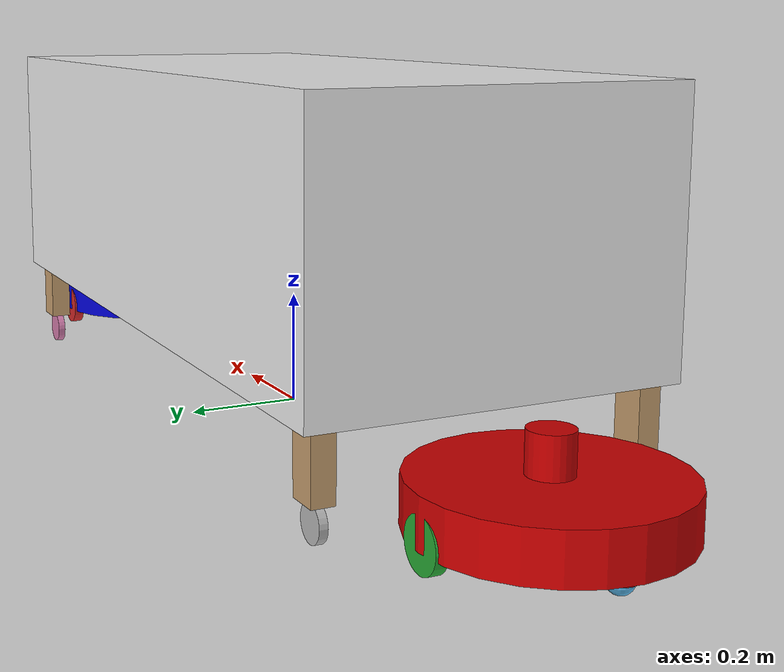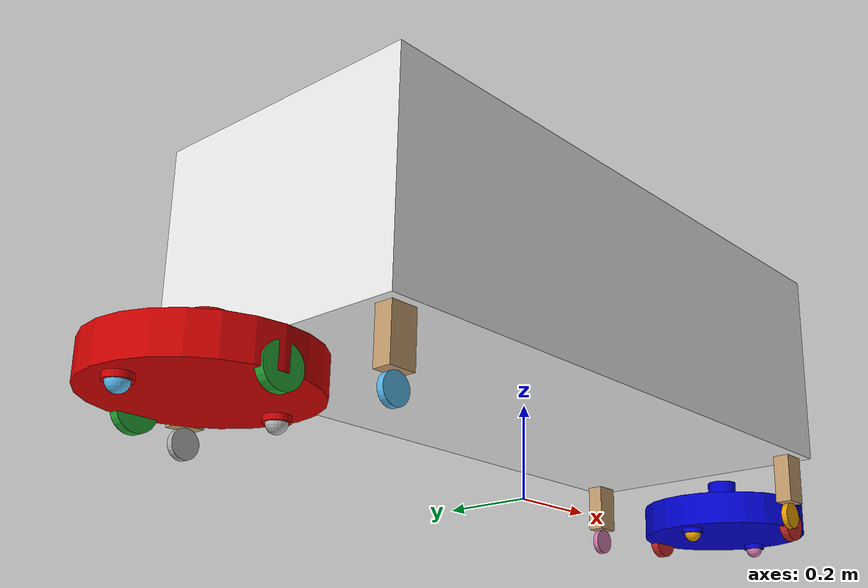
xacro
<?xml version="1.0"?>
<robot name="PATH" xmlns:xacro="http://www.ros.org/wiki/xacro">

  <xacro:property name="testbed_h" value="0.62"/><!--Faktisk d-->
  <xacro:property name="testbed_w" value="1.4"/>
  <xacro:property name="testbed_d" value="0.45"/> <!--Faktisk h-->
  <xacro:property name="testbed_m" value="11.26"/>

  <xacro:property name="testbed_wheellink_h" value="0.038"/> <!--Faktisk d-->
  <xacro:property name="testbed_wheellink_w" value="0.057"/>
  <xacro:property name="testbed_wheellink_d" value="0.11"/> <!--Faktisk h-->
  <xacro:property name="testbed_wheellink_m" value="0.135"/>
  <xacro:property name="testbed_wheellink_y" value="0.271"/>
  <xacro:property name="testbed_wheellink_x" value="0.6515"/>
  <xacro:property name="testbed_wheellink_z" value="0.115"/>

  <xacro:property name="testbed_wheel_r" value="0.03"/>
  <xacro:property name="testbed_wheel_h" value="0.0136"/>
  <xacro:property name="testbed_wheel_m" value="0.270"/>
  <xacro:property name="testbed_wheel_z" value="-0.085"/>
  <xacro:property name="testbed_wheel_friction" value="1"/>

  <xacro:property name="frame_mount_1_y" value="0"/>
  <xacro:property name="frame_mount_1_x" value="0.7"/>
  <xacro:property name="frame_mount_1_z" value="0.1385"/>
  <xacro:property name="frame_mount_1_w" value="0.02"/>
  <xacro:property name="frame_mount_1_h" value="0.02"/> <!--Faktisk d-->
  <xacro:property name="frame_mount_1_d" value="0.063"/> <!--Faktisk h-->
  <xacro:property name="frame_mount_1_m" value="0.135"/>

  <xacro:property name="frame_mount_robot_1_r" value="0.02"/>
  <xacro:property name="frame_mount_robot_1_l" value="0.02"/>
  <xacro:property name="frame_mount_robot_1_z" value="0.0315"/>

  <xacro:property name="offset_x_duck2" value="-0.111"/>
  <xacro:property name="offset_x_duck1" value="0.111"/>
  <xacro:property name="offset_z_duck" value="-0.105"/>

  <material name ="blue">
    <color rgba="0 0 0.8 1"/>
  </material>

   <material name ="red">
    <color rgba="0.8 0 0 1"/>
  </material>

   <material name ="brown">
    <color rgba="${193/255} ${154/255} ${107/255} 1"/>
  </material>

  <xacro:macro name="sphere_inertia" params="m r">
    <inertial>
      <mass value="${m}"/>
      <inertia ixx="${2.0*m*(r*r)/5.0}" ixy="0.0" ixz="0.0" iyy="${2.0*m*(r*r)/5.0}" iyz="0.0" izz="${2.0*m*(r*r)/5.0}"/>
    </inertial>
  </xacro:macro>

  <xacro:macro name="box_inertia" params="m w h d">
    <inertial>
      <mass value="${m}"/>
      <inertia ixx="${m / 12.0 * (d*d + h*h)}" ixy="0.0" ixz="0.0" iyy="${m / 12.0 * (w*w + h*h)}" iyz="0.0" izz="${m / 12.0 * (w*w + d*d)}"/>
    </inertial>
  </xacro:macro>

  <xacro:macro name="cylinder_inertia" params="m r h">
    <inertial>
      <mass value="${m}"/>
      <inertia ixx="${m*(3*r*r+h*h)/12}" ixy = "0" ixz = "0" iyy="${m*(3*r*r+h*h)/12}" iyz = "0" izz="${m*r*r/2}"/>
    </inertial>
  </xacro:macro>

  <link name="base_link">
  </link>

  <link name="testBed">
  <visual>
    <origin xyz="0 0 0.395" rpy="0 0 0"/>
    <geometry>
      <box size="${testbed_w} ${testbed_h} ${testbed_d}"/>
    </geometry>
  </visual>
   <collision>
      <origin xyz="0 0 0.395" rpy="0 0 0"/>
      <geometry>
        <box size="${testbed_w} ${testbed_h} ${testbed_d}"/>
      </geometry>
    </collision>
  </link>

  <joint name="base_joint" type="fixed">
  <origin xyz="0 0 0" rpy="0 0 0"/>
  <parent link="base_link"/>
  <child link="testBed"/>
</joint>

  <link name="testbed_wheelLink_1">
  <xacro:box_inertia m="${testbed_wheellink_m}" w="${testbed_wheellink_w}" h="${testbed_wheellink_h}" d="${testbed_wheellink_d}"/>
  <visual>
    <material name = "brown"/>
    <origin xyz="0 0 0" rpy="0 0 0"/>
    <geometry>
      <box size="${testbed_wheellink_w} ${testbed_wheellink_h} ${testbed_wheellink_d}"/>
    </geometry>
  </visual>
   <collision>
      <origin xyz="0 0 0" rpy="0 0 0"/>
      <geometry>
        <box size="${testbed_wheellink_w} ${testbed_wheellink_h} ${testbed_wheellink_d}"/>
      </geometry>
    </collision>
  </link>

  <joint name="testbed_wheelLink_1_joint" type="fixed">
    <origin xyz="${testbed_wheellink_x} ${testbed_wheellink_y} ${testbed_wheellink_z}" rpy="0 0 0"/>
    <parent link="testBed"/>
    <child link="testbed_wheelLink_1"/>
  </joint>

  <link name="testbed_wheelLink_2">
  <xacro:box_inertia m="${testbed_wheellink_m}" w="${testbed_wheellink_w}" h="${testbed_wheellink_h}" d="${testbed_wheellink_d}"/>
  <visual>
    <material name = "brown"/>
    <origin xyz="0 0 0" rpy="0 0 0"/>
    <geometry>
      <box size="${testbed_wheellink_w} ${testbed_wheellink_h} ${testbed_wheellink_d}"/>
    </geometry>
  </visual>
   <collision>
   <origin xyz="0 0 0" rpy="0 0 0"/>
      <geometry>
        <box size="${testbed_wheellink_w} ${testbed_wheellink_h} ${testbed_wheellink_d}"/>
      </geometry>
    </collision>
  </link>

<joint name="testbed_wheelLink_2_joint" type="fixed">
    <origin xyz="-${testbed_wheellink_x} ${testbed_wheellink_y} ${testbed_wheellink_z}" rpy="0 0 0"/>
    <parent link="testBed"/>
    <child link="testbed_wheelLink_2"/>
  </joint>

  <link name="testbed_wheelLink_3">
  <xacro:box_inertia m="${testbed_wheellink_m}" w="${testbed_wheellink_w}" h="${testbed_wheellink_h}" d="${testbed_wheellink_d}"/>
  <visual>
    <material name = "brown"/>
    <origin xyz="0 0 0" rpy="0 0 0"/>
    <geometry>
      <box size="${testbed_wheellink_w} ${testbed_wheellink_h} ${testbed_wheellink_d}"/>
    </geometry>
  </visual>
   <collision>
      <origin xyz="0 0 0" rpy="0 0 0"/>
      <geometry>
        <box size="${testbed_wheellink_w} ${testbed_wheellink_h} ${testbed_wheellink_d}"/>
      </geometry>
    </collision>
  </link>

  <joint name="testbed_wheelLink_3_joint" type="fixed">
    <origin xyz="${testbed_wheellink_x} -${testbed_wheellink_y} ${testbed_wheellink_z}" rpy="0 0 0"/>
    <parent link="testBed"/>
    <child link="testbed_wheelLink_3"/>
  </joint>

  <link name="testbed_wheelLink_4">
  <xacro:box_inertia m="${testbed_wheellink_m}" w="${testbed_wheellink_w}" h="${testbed_wheellink_h}" d="${testbed_wheellink_d}"/>
  <visual>
    <material name = "brown"/>
    <origin xyz="0 0 0" rpy="0 0 0"/>
    <geometry>
      <box size="${testbed_wheellink_w} ${testbed_wheellink_h} ${testbed_wheellink_d}"/>
    </geometry>
  </visual>
   <collision>
      <origin xyz="0 0 0" rpy="0 0 0"/>
      <geometry>
        <box size="${testbed_wheellink_w} ${testbed_wheellink_h} ${testbed_wheellink_d}"/>
      </geometry>
    </collision>
  </link>

  <joint name="testbed_wheelLink_4_joint" type="fixed">
     <origin xyz="-${testbed_wheellink_x} -${testbed_wheellink_y} ${testbed_wheellink_z}" rpy="0 0 0"/>
    <parent link="testBed"/>
    <child link="testbed_wheelLink_4"/>
  </joint>

  <link name="testbed_wheel_1">
    <visual>
      <origin xyz="0 0 0" rpy="1.5708 0 0"/>
      <geometry>
        <cylinder length="${testbed_wheel_h}" radius="${testbed_wheel_r}"/>
      </geometry>
    </visual>

    <surface>
      <friction>
        <ode>
          <mu>${testbed_wheel_friction}</mu>
        </ode>
      </friction>
    </surface>
    <xacro:sphere_inertia m="${testbed_wheel_m}" r="${testbed_wheel_r}"/>
  </link>

  <link name="testbed_wheel_2">
    <visual>
      <origin xyz="0 0 0" rpy="1.5708 0 0"/>
      <geometry>
        <cylinder length="${testbed_wheel_h}" radius="${testbed_wheel_r}"/>
      </geometry>
    </visual>

    <surface>
      <friction>
        <ode>
          <mu>${testbed_wheel_friction}</mu>
        </ode>
      </friction>
    </surface>
    <xacro:sphere_inertia m="${testbed_wheel_m}" r="${testbed_wheel_r}"/>
  </link>

  <link name="testbed_wheel_3">
    <visual>
      <origin xyz="0 0 0" rpy="1.5708 0 0"/>
      <geometry>
        <cylinder length="${testbed_wheel_h}" radius="${testbed_wheel_r}"/>
      </geometry>
    </visual>

    <surface>
      <friction>
        <ode>
          <mu>${testbed_wheel_friction}</mu>
          <mu2>${testbed_wheel_friction}</mu2>
          <slip1>${testbed_wheel_friction}</slip1>
          <slip2>${testbed_wheel_friction}</slip2>
        </ode>
      </friction>
    </surface>
    <xacro:sphere_inertia m="${testbed_wheel_m}" r="${testbed_wheel_r}"/>
  </link>

  <link name="testbed_wheel_4">
    <visual>
      <origin xyz="0 0 0" rpy="1.5708 0 0"/>
      <geometry>
        <cylinder length="${testbed_wheel_h}" radius="${testbed_wheel_r}"/>
      </geometry>
    </visual>

    <surface>
      <friction>
        <ode>
          <mu>${testbed_wheel_friction}</mu>
          <mu2>${testbed_wheel_friction}</mu2>
          <slip1>${testbed_wheel_friction}</slip1>
          <slip2>${testbed_wheel_friction}</slip2>
        </ode>
      </friction>
    </surface>
    <xacro:sphere_inertia m="${testbed_wheel_m}" r="${testbed_wheel_r}"/>
  </link>

  <joint name="testbed_wheel1_joint" type="continuous">
    <origin xyz="0 0 ${testbed_wheel_z}" rpy="0 0 0"/>
    <parent link="testbed_wheelLink_1"/>
    <child link="testbed_wheel_1"/>
  </joint>

  <joint name="testbed_wheel2_joint" type="continuous">
    <origin xyz="0 0 ${testbed_wheel_z}" rpy="0 0 0"/>
    <parent link="testbed_wheelLink_2"/>
    <child link="testbed_wheel_2"/>
  </joint>

    <joint name="testbed_wheel3_joint" type="continuous">
    <origin xyz="0 0 ${testbed_wheel_z}" rpy="0 0 0"/>
    <parent link="testbed_wheelLink_3"/>
    <child link="testbed_wheel_3"/>
  </joint>

  <joint name="testbed_wheel4_joint" type="continuous">
    <origin xyz="0 0 ${testbed_wheel_z}" rpy="0 0 0"/>
    <parent link="testbed_wheelLink_4"/>
    <child link="testbed_wheel_4"/>
  </joint>

  <link name="framemount_1_link">
  <xacro:box_inertia m="${frame_mount_1_m}" w="${frame_mount_1_w}" h="${frame_mount_1_h}" d="${frame_mount_1_d}"/>
  <visual>
    <origin xyz="0 0 0" rpy="0 0 0"/>
    <geometry>
      <box size="${frame_mount_1_w} ${frame_mount_1_h} ${frame_mount_1_d}"/>
    </geometry>
  </visual>
     </link>

  <joint name="testbed_framemount_1_joint" type="fixed">
    <origin xyz="${frame_mount_1_x + offset_x_duck1} ${frame_mount_1_y} ${frame_mount_1_z} " rpy="0 0 0"/>
    <parent link="testBed"/>
    <child link="framemount_1_link"/>
  </joint>
  <link name="duck1">
  <xacro:cylinder_inertia m="2" r="0.2" h="0.076"/>
    <visual>
      <material name = "blue"/>
      <origin xyz="0 0 0.038" rpy="0 0 0"/>
      <geometry>
        <cylinder length="0.076" radius="0.2"/>
      </geometry>
    </visual>
    <collision>
      <origin xyz="0 0 0.038" rpy="0 0 0"/>
      <geometry>
        <cylinder length="0.076" radius="0.2"/>
      </geometry>
    </collision>
  </link>

  <joint name="duck1_joint" type="continuous">
    <origin xyz="0 0 ${offset_z_duck} " rpy="0 0 0"/>
     <axis xyz="0 0 1" rpy="0 0 0"/>
    <parent link="framemount_1_link"/>
    <child link="duck1"/>
  </joint>

  <link name="duck1_lidar">
  <xacro:cylinder_inertia m="0.2" r="0.035" h="0.064"/>
    <visual>
      <material name = "blue"/>
      <origin xyz="0 0 0.032" rpy="0 0 0"/>
      <geometry>
        <cylinder length="0.064" radius="0.035"/>
      </geometry>
    </visual>
    <collision>
      <origin xyz="0 0 0.032" rpy="0 0 0"/>
      <geometry>
        <cylinder length="0.064" radius="0.035"/>
      </geometry>
    </collision>
  </link>

  <link name="duck1_castorsupport_1">
  <xacro:cylinder_inertia m="0.2" r="0.025" h="0.012"/>
    <visual>
      <material name = "blue"/>
      <origin xyz="0 0 0" rpy="0 0 0"/>
      <geometry>
        <cylinder length="0.012" radius="0.025"/>
      </geometry>
    </visual>
    <collision>
      <origin xyz="0 0 0" rpy="0 0 0"/>
      <geometry>
        <cylinder length="0.012" radius="0.025"/>
      </geometry>
    </collision>
  </link>

  <joint name="caster1_joint" type="fixed">
    <origin xyz="0.153 0 -0.006" rpy="0 0 0"/>
    <parent link="duck1"/>
    <child link="duck1_castorsupport_1"/>
  </joint>

  <link name="duck1_castorwheel_1">
  <xacro:sphere_inertia m="0.5" r="0.025"/>
    <visual>
      <origin xyz="0 0 0" rpy="0 0 0"/>
      <geometry>
        <sphere radius="0.02"/>
      </geometry>
    </visual>
    <collision>
      <origin xyz="0 0 0" rpy="0 0 0"/>
      <geometry>
        <cylinder length="0.012" radius="0.025"/>
      </geometry>
    </collision>
  </link>

  <joint name="casterwheel_1_joint" type="continuous">
    <origin xyz="0 0 -0.006" rpy="0 0 0"/>
    <axis xyz="0 1 0" rpy="0 0 0"/>
    <parent link="duck1_castorsupport_1"/>
    <child link="duck1_castorwheel_1"/>
  </joint>

  <link name="duck1_castorsupport_2">
  <xacro:cylinder_inertia m="0.2" r="0.025" h="0.012"/>
    <visual>
      <material name = "blue"/>
      <origin xyz="0 0 0" rpy="0 0 0"/>
      <geometry>
        <cylinder length="0.012" radius="0.025"/>
      </geometry>
    </visual>
    <collision>
      <origin xyz="0 0 0" rpy="0 0 0"/>
      <geometry>
        <cylinder length="0.012" radius="0.025"/>
      </geometry>
    </collision>
  </link>

  <joint name="duck1_caster2_joint" type="fixed">
    <origin xyz="-0.153 0 -0.006" rpy="0 0 0"/>
    <parent link="duck1"/>
    <child link="duck1_castorsupport_2"/>
  </joint>

  <link name="duck1_castorwheel_2">
  <xacro:sphere_inertia m="0.5" r="2"/>
    <visual>
      <origin xyz="0 0 0" rpy="0 0 0"/>
      <geometry>
        <sphere radius="0.02"/>
      </geometry>
    </visual>
    <collision>
      <origin xyz="0 0 0" rpy="0 0 0"/>
      <geometry>
        <cylinder length="0.012" radius="0.025"/>
      </geometry>
    </collision>
  </link>

  <joint name="duck1_casterwheel_2_joint" type="continuous">
    <origin xyz="0 0 -0.006" rpy="0 0 0"/>
    <axis xyz="0 1 0" rpy="0 0 0"/>
    <parent link="duck1_castorsupport_2"/>
    <child link="duck1_castorwheel_2"/>
  </joint>

  <link name="duck1_wheel1">
    <xacro:cylinder_inertia m="0.1" r="0.042" h="0.02"/>
    <visual>
      <origin xyz="0 0 0" rpy="1.5708 0 0"/>
      <geometry>
        <cylinder length="0.02" radius="0.041"/>
      </geometry>
    </visual>
    <collision>
      <origin xyz="0 0 0" rpy="1.5708 0 0"/>
      <geometry>
        <cylinder length="0.02" radius="0.041"/>
      </geometry>
    </collision>
  </link>

   <link name="duck1_wheel2">
   <xacro:cylinder_inertia m="0.1" r="0.042" h="0.02"/>
    <visual>
      <origin xyz="0 0 0" rpy="1.5708 0 0"/>
      <geometry>
        <cylinder length="0.02" radius="0.041"/>
      </geometry>
    </visual>
    <collision>
      <origin xyz="0 0 0" rpy="1.5708 0 0"/>
      <geometry>
        <cylinder length="0.02" radius="0.041"/>
      </geometry>
    </collision>
  </link>

  <joint name="duck1_lidar_joint" type="fixed">
    <origin xyz="0 0 0.076" rpy="0 0 0"/>
    <parent link="duck1"/>
    <child link="duck1_lidar"/>
  </joint>

   <joint name="duck1_wheel1_joint" type="continuous">
    <origin xyz="0 0.1885 0.01" rpy="0 0 0"/>
    <axis xyz="0 1 0" rpy="0 0 0"/>
    <parent link="duck1"/>
    <child link="duck1_wheel1"/>
  </joint>

  <joint name="duck1_wheel2_joint" type="continuous">
    <origin xyz="0 -0.1885 0.01" rpy="0 0 0"/>
    <axis xyz="0 1 0" rpy="0 0 0"/>
    <parent link="duck1"/>
    <child link="duck1_wheel2"/>
  </joint>

  <link name="framemount_2_link">
  <xacro:box_inertia m="${frame_mount_1_m}" w="${frame_mount_1_w}" h="${frame_mount_1_h}" d="${frame_mount_1_d}"/>
  <visual>
    <origin xyz="0 0 0" rpy="0 0 0"/>
    <geometry>
      <box size="${frame_mount_1_w} ${frame_mount_1_h} ${frame_mount_1_d}"/>
    </geometry>
  </visual>
     </link>

  <joint name="testbed_framemount_2_joint" type="fixed">
    <origin xyz="${-1*(frame_mount_1_x + offset_x_duck1)} ${frame_mount_1_y} ${frame_mount_1_z} " rpy="0 0 0"/>
    <parent link="testBed"/>
    <child link="framemount_2_link"/>
  </joint>

  <link name="duck2">
  <xacro:cylinder_inertia m="2" r="0.2" h="0.076"/>
    <visual>
      <material name = "red"/>
      <origin xyz="0 0 0.038" rpy="0 0 0"/>
      <geometry>
        <cylinder length="0.076" radius="0.2"/>
      </geometry>
    </visual>
    <collision>
      <origin xyz="0 0 0.038" rpy="0 0 0"/>
      <geometry>
        <cylinder length="0.076" radius="0.2"/>
      </geometry>
    </collision>
  </link>

  <joint name="duck2_joint" type="continuous">
    <origin xyz="0 0 ${offset_z_duck} " rpy="0 0 0"/>
     <axis xyz="0 0 1" rpy="0 0 0"/>
    <parent link="framemount_2_link"/>
    <child link="duck2"/>
  </joint>

  <link name="duck2_lidar">
  <xacro:cylinder_inertia m="0.2" r="0.035" h="0.064"/>
    <visual>
      <material name = "red"/>
      <origin xyz="0 0 0.032" rpy="0 0 0"/>
      <geometry>
        <cylinder length="0.064" radius="0.035"/>
      </geometry>
    </visual>
    <collision>
      <origin xyz="0 0 0.032" rpy="0 0 0"/>
      <geometry>
        <cylinder length="0.064" radius="0.035"/>
      </geometry>
    </collision>
  </link>

  <link name="duck2_castorsupport_1">
  <xacro:cylinder_inertia m="0.2" r="0.025" h="0.012"/>
    <visual>
      <material name = "red"/>
      <origin xyz="0 0 0" rpy="0 0 0"/>
      <geometry>
        <cylinder length="0.012" radius="0.025"/>
      </geometry>
    </visual>
    <collision>
      <origin xyz="0 0 0" rpy="0 0 0"/>
      <geometry>
        <cylinder length="0.012" radius="0.025"/>
      </geometry>
    </collision>
  </link>

  <joint name="caster2_joint" type="fixed">
    <origin xyz="0.153 0 -0.006" rpy="0 0 0"/>
    <parent link="duck2"/>
    <child link="duck2_castorsupport_1"/>
  </joint>

  <link name="duck2_castorwheel_1">
  <xacro:sphere_inertia m="0.5" r="0.025"/>
    <visual>
      <origin xyz="0 0 0" rpy="0 0 0"/>
      <geometry>
        <sphere radius="0.02"/>
      </geometry>
    </visual>
    <collision>
      <origin xyz="0 0 0" rpy="0 0 0"/>
      <geometry>
        <cylinder length="0.012" radius="0.025"/>
      </geometry>
    </collision>
  </link>

  <joint name="duck2_casterwheel_1_joint" type="continuous">
    <origin xyz="0 0 -0.006" rpy="0 0 0"/>
    <axis xyz="0 1 0" rpy="0 0 0"/>
    <parent link="duck2_castorsupport_1"/>
    <child link="duck2_castorwheel_1"/>
  </joint>

  <link name="duck2_castorsupport_2">
  <xacro:cylinder_inertia m="0.2" r="0.025" h="0.012"/>
    <visual>
      <material name = "red"/>
      <origin xyz="0 0 0" rpy="0 0 0"/>
      <geometry>
        <cylinder length="0.012" radius="0.025"/>
      </geometry>
    </visual>
    <collision>
      <origin xyz="0 0 0" rpy="0 0 0"/>
      <geometry>
        <cylinder length="0.012" radius="0.025"/>
      </geometry>
    </collision>
  </link>

  <joint name="duck2_caster2_joint" type="fixed">
    <origin xyz="-0.153 0 -0.006" rpy="0 0 0"/>
    <parent link="duck2"/>
    <child link="duck2_castorsupport_2"/>
  </joint>

  <link name="duck2_castorwheel_2">
  <xacro:sphere_inertia m="0.5" r="2"/>
    <visual>
      <origin xyz="0 0 0" rpy="0 0 0"/>
      <geometry>
        <sphere radius="0.02"/>
      </geometry>
    </visual>
    <collision>
      <origin xyz="0 0 0" rpy="0 0 0"/>
      <geometry>
        <cylinder length="0.012" radius="0.025"/>
      </geometry>
    </collision>
  </link>

  <joint name="duck2_casterwheel_2_joint" type="continuous">
    <origin xyz="0 0 -0.006" rpy="0 0 0"/>
    <axis xyz="0 1 0" rpy="0 0 0"/>
    <parent link="duck2_castorsupport_2"/>
    <child link="duck2_castorwheel_2"/>
  </joint>

  <link name="duck2_wheel1">
    <xacro:cylinder_inertia m="0.1" r="0.042" h="0.02"/>
    <visual>
      <origin xyz="0 0 0" rpy="1.5708 0 0"/>
      <geometry>
        <cylinder length="0.02" radius="0.041"/>
      </geometry>
    </visual>
    <collision>
      <origin xyz="0 0 0" rpy="1.5708 0 0"/>
      <geometry>
        <cylinder length="0.02" radius="0.041"/>
      </geometry>
    </collision>
  </link>

   <link name="duck2_wheel2">
   <xacro:cylinder_inertia m="0.1" r="0.042" h="0.02"/>
    <visual>
      <origin xyz="0 0 0" rpy="1.5708 0 0"/>
      <geometry>
        <cylinder length="0.02" radius="0.041"/>
      </geometry>
    </visual>
    <collision>
      <origin xyz="0 0 0" rpy="1.5708 0 0"/>
      <geometry>
        <cylinder length="0.02" radius="0.041"/>
      </geometry>
    </collision>
  </link>

  <joint name="duck2_lidar_joint" type="fixed">
    <origin xyz="0 0 0.076" rpy="0 0 0"/>
    <parent link="duck2"/>
    <child link="duck2_lidar"/>
  </joint>

   <joint name="duck2_wheel1_joint" type="continuous">
    <origin xyz="0 0.1885 0.01" rpy="0 0 0"/>
    <axis xyz="0 1 0" rpy="0 0 0"/>
    <parent link="duck2"/>
    <child link="duck2_wheel1"/>
  </joint>

  <joint name="duck2_wheel2_joint" type="continuous">
    <origin xyz="0 -0.1885 0.01" rpy="0 0 0"/>
    <axis xyz="0 1 0" rpy="0 0 0"/>
    <parent link="duck2"/>
    <child link="duck2_wheel2"/>
  </joint>

  <gazebo>
    <plugin name="differential_drive_controller" filename="libgazebo_ros_diff_drive.so">
      <alwaysOn>false</alwaysOn>
      <legacyMode>false</legacyMode>
      <updateRate>20</updateRate>
      <leftJoint>duck1_wheel1_joint</leftJoint>
      <rightJoint>duck1_wheel2_joint</rightJoint>
      <wheelSeparation>0.377</wheelSeparation>
      <wheelDiameter>0.082</wheelDiameter>
      <torque>20</torque>
      <commandTopic>/cmd_vel/duck1</commandTopic>
      <odometryTopic>/odomSim</odometryTopic>
      <odometryFrame>odomSim</odometryFrame>
      <robotBaseFrame>base_link</robotBaseFrame>

    </plugin>
  </gazebo>

  <gazebo>
    <plugin name="differential_drive_controller" filename="libgazebo_ros_diff_drive.so">
      <alwaysOn>false</alwaysOn>
      <legacyMode>false</legacyMode>
      <updateRate>20</updateRate>
      <leftJoint>duck2_wheel1_joint</leftJoint>
      <rightJoint>duck2_wheel2_joint</rightJoint>
      <wheelSeparation>0.377</wheelSeparation>
      <wheelDiameter>0.082</wheelDiameter>
      <torque>20</torque>
      <commandTopic>/cmd_vel/duck2</commandTopic>
      <odometryTopic>/odomSim</odometryTopic>
      <odometryFrame>odomSim</odometryFrame>
      <robotBaseFrame>base_link</robotBaseFrame>

    </plugin>
  </gazebo>

  <gazebo reference="duck1">
    <material>Gazebo/Red</material>
  </gazebo>
  <gazebo reference="duck1_wheel1">
    <material>Gazebo/Red</material>
  </gazebo>
  <gazebo reference="duck1_wheel2">
    <material>Gazebo/Red</material>
  </gazebo>
  <gazebo reference="duck2">
    <material>Gazebo/Green</material>
  </gazebo>
  <gazebo reference="duck2_wheel1">
    <material>Gazebo/Green</material>
  </gazebo>
  <gazebo reference="duck2_wheel2">
    <material>Gazebo/Green</material>
  </gazebo>
  <gazebo reference="testBed">
    <material>Gazebo/WhiteGlow</material>
  </gazebo>

</robot>
